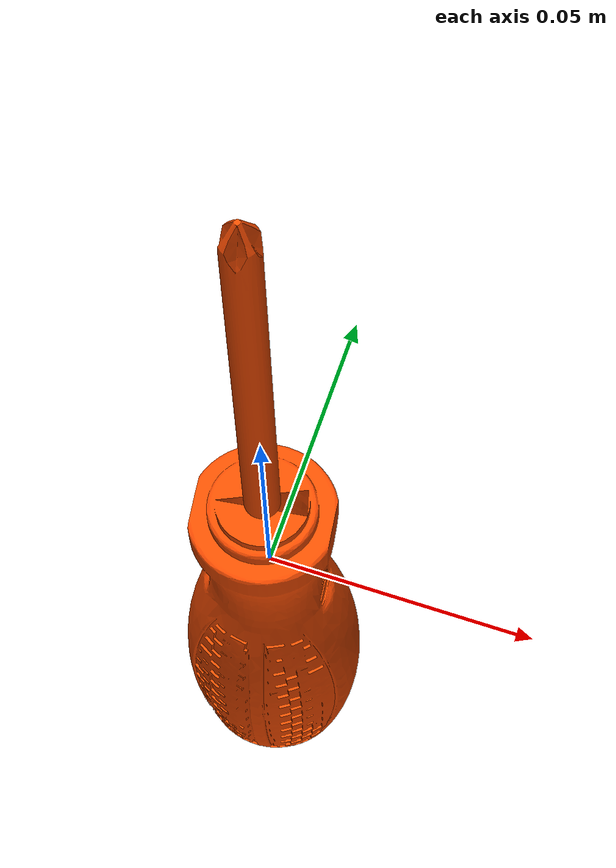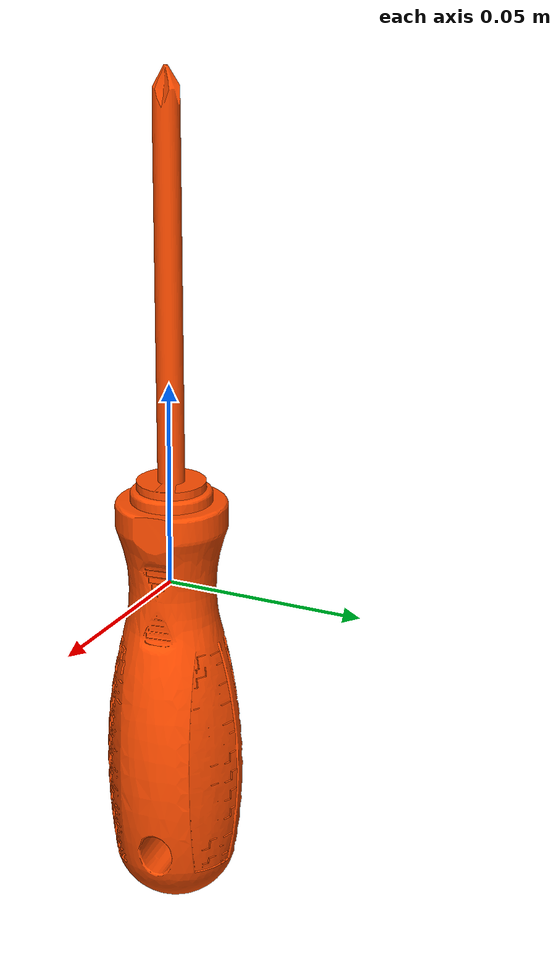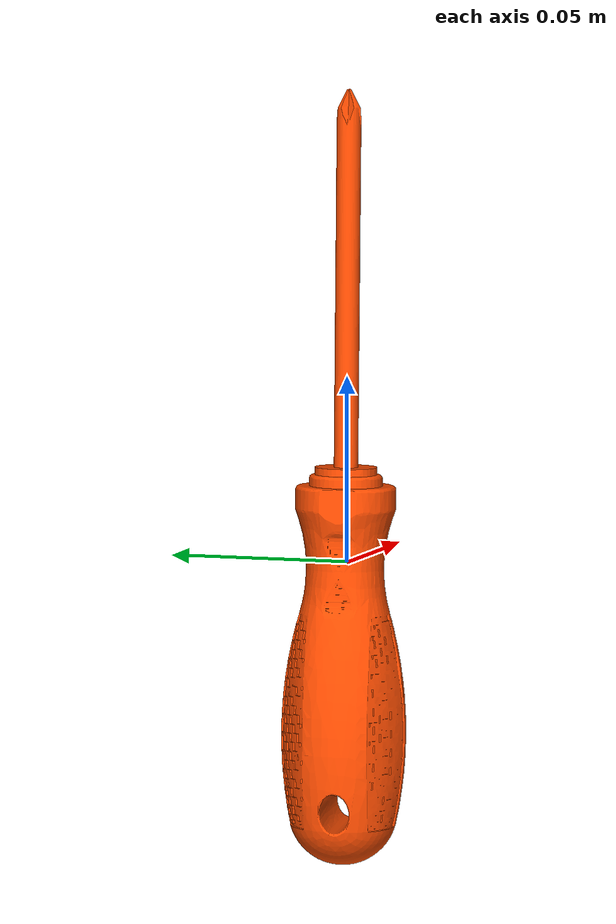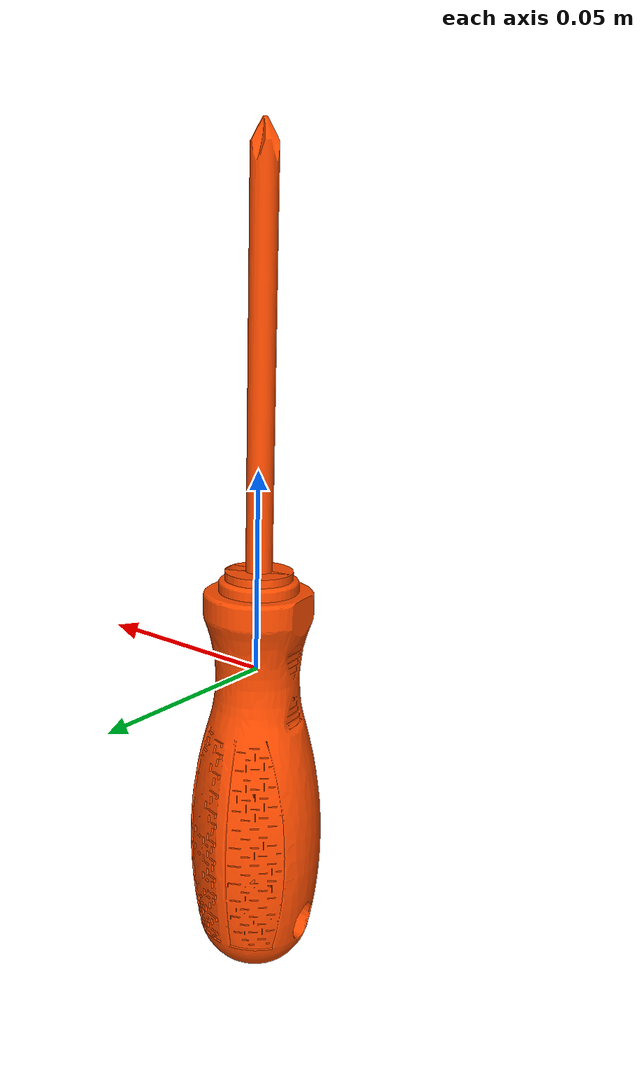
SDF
<?xml version="1.0"?>
<sdf version="1.7">
  <model name="phillips_screwdriver_100mm_bright">
    <pose>0 0 0 0 0 0</pose>
    <static>false</static>
    <link name="link">
      <!-- link frame = tool CoM; Z = long axis (+ toward tool end), X = forward, Y = Z x X -->
      <inertial>
        <pose>0 0 0 0 0 0</pose>
        <mass>0.083800</mass>
        <inertia>
          <ixx>2.694161e-04</ixx>
          <ixy>-1.480011e-07</ixy>
          <ixz>1.414266e-06</ixz>
          <iyy>2.692107e-04</iyy>
          <iyz>4.396737e-07</iyz>
          <izz>6.178127e-06</izz>
        </inertia>
      </inertial>
      <collision name="collision">
        <geometry>
          <mesh>
            <uri>model://phillips_screwdriver_100mm/meshes/phillips_screwdriver_100mm.dae</uri>
          </mesh>
        </geometry>
      </collision>
      <visual name="visual">
        <geometry>
          <mesh>
            <uri>model://phillips_screwdriver_100mm/meshes/phillips_screwdriver_100mm.dae</uri>
          </mesh>
        </geometry>
        <material>
          <ambient>0.450 0.135 0.000 1.0</ambient>
          <diffuse>1.000 0.300 0.000 1.0</diffuse>
          <specular>0.85 0.85 0.85 1.0</specular>
          <emissive>0 0 0 1.0</emissive>
        </material>
      </visual>
    </link>
  </model>
</sdf>
